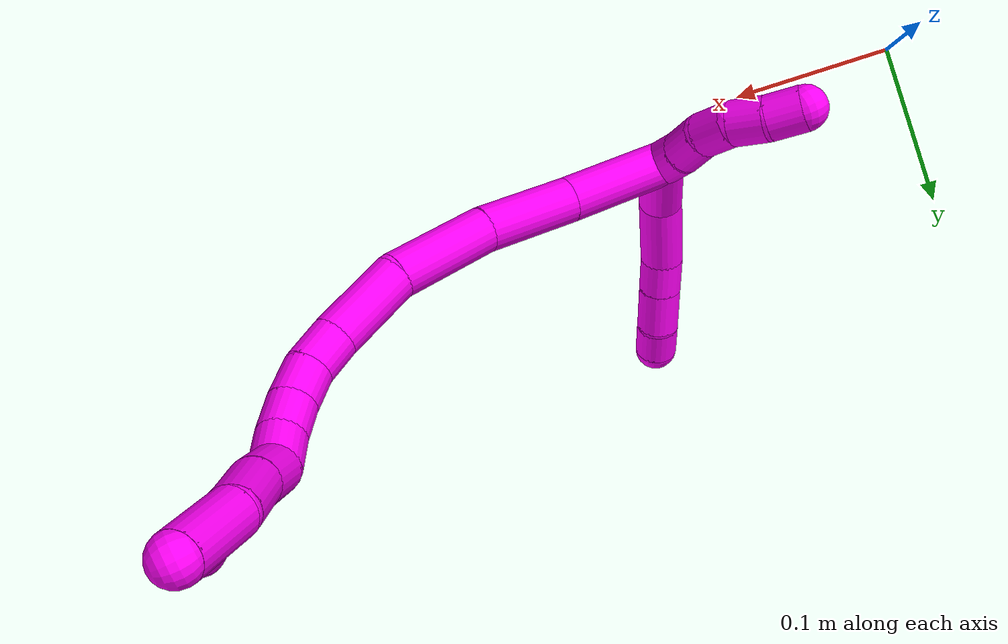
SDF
<sdf version="1.7">
 <world name="default">
  <model name="10">
   <static>0</static>
   <link name="10">
    <collision name="collision-cylinder-e_1_2_8">
     <pose>0.015698 0.009521 -0.000661 -1.64006 1.02456 -1.08484</pose>
     <geometry><cylinder><radius>0.0125</radius><length>0.036744</length></cylinder></geometry>
     <surface>
      <friction><ode><mu>1.16</mu><mu2>1.16</mu2><slip1>0</slip1><slip2>0</slip2></ode></friction>
      <contact><ode><kp>1e+06</kp><kd>1</kd><max_vel>0</max_vel><min_depth>0.001</min_depth></ode></contact>
     </surface>
    </collision>
    <visual name="visual-cylinder-e_1_2_8">
     <pose>0.015698 0.009521 -0.000661 -1.64006 1.02456 -1.08484</pose>
     <geometry><cylinder><radius>0.0125</radius><length>0.036744</length></cylinder></geometry>
     <material><ambient>1 0 0.964706 1</ambient></material>
    </visual>
    <collision name="collision-cylinder-e_2_8_9">
     <pose>0.045954 0.034435 0.00053 -1.45115 0.753903 -0.675381</pose>
     <geometry><cylinder><radius>0.0125</radius><length>0.042534</length></cylinder></geometry>
     <surface>
      <friction><ode><mu>1.16</mu><mu2>1.16</mu2><slip1>0</slip1><slip2>0</slip2></ode></friction>
      <contact><ode><kp>1e+06</kp><kd>1</kd><max_vel>0</max_vel><min_depth>0.001</min_depth></ode></contact>
     </surface>
    </collision>
    <visual name="visual-cylinder-e_2_8_9">
     <pose>0.045954 0.034435 0.00053 -1.45115 0.753903 -0.675381</pose>
     <geometry><cylinder><radius>0.0125</radius><length>0.042534</length></cylinder></geometry>
     <material><ambient>1 0 0.964706 1</ambient></material>
    </visual>
    <collision name="collision-cylinder-e_3_9_10">
     <pose>0.067205 0.058044 0.004709 -1.2946 0.664822 -0.510552</pose>
     <geometry><cylinder><radius>0.0125</radius><length>0.021701</length></cylinder></geometry>
     <surface>
      <friction><ode><mu>1.16</mu><mu2>1.16</mu2><slip1>0</slip1><slip2>0</slip2></ode></friction>
      <contact><ode><kp>1e+06</kp><kd>1</kd><max_vel>0</max_vel><min_depth>0.001</min_depth></ode></contact>
     </surface>
    </collision>
    <visual name="visual-cylinder-e_3_9_10">
     <pose>0.067205 0.058044 0.004709 -1.2946 0.664822 -0.510552</pose>
     <geometry><cylinder><radius>0.0125</radius><length>0.021701</length></cylinder></geometry>
     <material><ambient>1 0 0.964706 1</ambient></material>
    </visual>
    <collision name="collision-cylinder-e_4_10_11">
     <pose>0.082547 0.076884 0.009954 -1.30288 0.665541 -0.515346</pose>
     <geometry><cylinder><radius>0.0125</radius><length>0.028014</length></cylinder></geometry>
     <surface>
      <friction><ode><mu>1.16</mu><mu2>1.16</mu2><slip1>0</slip1><slip2>0</slip2></ode></friction>
      <contact><ode><kp>1e+06</kp><kd>1</kd><max_vel>0</max_vel><min_depth>0.001</min_depth></ode></contact>
     </surface>
    </collision>
    <visual name="visual-cylinder-e_4_10_11">
     <pose>0.082547 0.076884 0.009954 -1.30288 0.665541 -0.515346</pose>
     <geometry><cylinder><radius>0.0125</radius><length>0.028014</length></cylinder></geometry>
     <material><ambient>1 0 0.964706 1</ambient></material>
    </visual>
    <collision name="collision-cylinder-e_5_11_6">
     <pose>0.098803 0.094622 0.014243 -1.38019 0.809823 -0.680118</pose>
     <geometry><cylinder><radius>0.0125</radius><length>0.021008</length></cylinder></geometry>
     <surface>
      <friction><ode><mu>1.16</mu><mu2>1.16</mu2><slip1>0</slip1><slip2>0</slip2></ode></friction>
      <contact><ode><kp>1e+06</kp><kd>1</kd><max_vel>0</max_vel><min_depth>0.001</min_depth></ode></contact>
     </surface>
    </collision>
    <visual name="visual-cylinder-e_5_11_6">
     <pose>0.098803 0.094622 0.014243 -1.38019 0.809823 -0.680118</pose>
     <geometry><cylinder><radius>0.0125</radius><length>0.021008</length></cylinder></geometry>
     <material><ambient>1 0 0.964706 1</ambient></material>
    </visual>
    <collision name="collision-cylinder-e_1_2_12">
     <pose>-0.009352 -0.000346 -0.003524 3.04361 -1.20883 -2.99984</pose>
     <geometry><cylinder><radius>0.0125</radius><length>0.02</length></cylinder></geometry>
     <surface>
      <friction><ode><mu>1.16</mu><mu2>1.16</mu2><slip1>0</slip1><slip2>0</slip2></ode></friction>
      <contact><ode><kp>1e+06</kp><kd>1</kd><max_vel>0</max_vel><min_depth>0.001</min_depth></ode></contact>
     </surface>
    </collision>
    <visual name="visual-cylinder-e_1_2_12">
     <pose>-0.009352 -0.000346 -0.003524 3.04361 -1.20883 -2.99984</pose>
     <geometry><cylinder><radius>0.0125</radius><length>0.02</length></cylinder></geometry>
     <material><ambient>1 0 0.964706 1</ambient></material>
    </visual>
    <collision name="collision-cylinder-e_2_12_13">
     <pose>-0.027847 -0.00226 -0.010782 2.74411 -1.15385 -2.54134</pose>
     <geometry><cylinder><radius>0.0125</radius><length>0.02</length></cylinder></geometry>
     <surface>
      <friction><ode><mu>1.16</mu><mu2>1.16</mu2><slip1>0</slip1><slip2>0</slip2></ode></friction>
      <contact><ode><kp>1e+06</kp><kd>1</kd><max_vel>0</max_vel><min_depth>0.001</min_depth></ode></contact>
     </surface>
    </collision>
    <visual name="visual-cylinder-e_2_12_13">
     <pose>-0.027847 -0.00226 -0.010782 2.74411 -1.15385 -2.54134</pose>
     <geometry><cylinder><radius>0.0125</radius><length>0.02</length></cylinder></geometry>
     <material><ambient>1 0 0.964706 1</ambient></material>
    </visual>
    <collision name="collision-cylinder-e_3_13_14">
     <pose>-0.045462 -0.003187 -0.019792 -3.02059 -1.01051 2.92344</pose>
     <geometry><cylinder><radius>0.0125</radius><length>0.02</length></cylinder></geometry>
     <surface>
      <friction><ode><mu>1.16</mu><mu2>1.16</mu2><slip1>0</slip1><slip2>0</slip2></ode></friction>
      <contact><ode><kp>1e+06</kp><kd>1</kd><max_vel>0</max_vel><min_depth>0.001</min_depth></ode></contact>
     </surface>
    </collision>
    <visual name="visual-cylinder-e_3_13_14">
     <pose>-0.045462 -0.003187 -0.019792 -3.02059 -1.01051 2.92344</pose>
     <geometry><cylinder><radius>0.0125</radius><length>0.02</length></cylinder></geometry>
     <material><ambient>1 0 0.964706 1</ambient></material>
    </visual>
    <collision name="collision-cylinder-e_4_14_15">
     <pose>-0.060572 0.000293 -0.031986 -2.75235 -0.726033 2.18424</pose>
     <geometry><cylinder><radius>0.0125</radius><length>0.02</length></cylinder></geometry>
     <surface>
      <friction><ode><mu>1.16</mu><mu2>1.16</mu2><slip1>0</slip1><slip2>0</slip2></ode></friction>
      <contact><ode><kp>1e+06</kp><kd>1</kd><max_vel>0</max_vel><min_depth>0.001</min_depth></ode></contact>
     </surface>
    </collision>
    <visual name="visual-cylinder-e_4_14_15">
     <pose>-0.060572 0.000293 -0.031986 -2.75235 -0.726033 2.18424</pose>
     <geometry><cylinder><radius>0.0125</radius><length>0.02</length></cylinder></geometry>
     <material><ambient>1 0 0.964706 1</ambient></material>
    </visual>
    <collision name="collision-cylinder-e_5_15_5">
     <pose>-0.072769 0.004787 -0.047051 -2.94102 -0.589356 2.50135</pose>
     <geometry><cylinder><radius>0.0125</radius><length>0.02</length></cylinder></geometry>
     <surface>
      <friction><ode><mu>1.16</mu><mu2>1.16</mu2><slip1>0</slip1><slip2>0</slip2></ode></friction>
      <contact><ode><kp>1e+06</kp><kd>1</kd><max_vel>0</max_vel><min_depth>0.001</min_depth></ode></contact>
     </surface>
    </collision>
    <visual name="visual-cylinder-e_5_15_5">
     <pose>-0.072769 0.004787 -0.047051 -2.94102 -0.589356 2.50135</pose>
     <geometry><cylinder><radius>0.0125</radius><length>0.02</length></cylinder></geometry>
     <material><ambient>1 0 0.964706 1</ambient></material>
    </visual>
    <collision name="collision-cylinder-e_1_2_16">
     <pose>-0.002986 -0.001653 0.030031 0.054975 -0.098961 -0.002723</pose>
     <geometry><cylinder><radius>0.0125</radius><length>0.060449</length></cylinder></geometry>
     <surface>
      <friction><ode><mu>1.16</mu><mu2>1.16</mu2><slip1>0</slip1><slip2>0</slip2></ode></friction>
      <contact><ode><kp>1e+06</kp><kd>1</kd><max_vel>0</max_vel><min_depth>0.001</min_depth></ode></contact>
     </surface>
    </collision>
    <visual name="visual-cylinder-e_1_2_16">
     <pose>-0.002986 -0.001653 0.030031 0.054975 -0.098961 -0.002723</pose>
     <geometry><cylinder><radius>0.0125</radius><length>0.060449</length></cylinder></geometry>
     <material><ambient>1 0 0.964706 1</ambient></material>
    </visual>
    <collision name="collision-cylinder-e_2_16_17">
     <pose>-0.011334 -0.005355 0.086124 0.078479 -0.20229 -0.007969</pose>
     <geometry><cylinder><radius>0.0125</radius><length>0.053373</length></cylinder></geometry>
     <surface>
      <friction><ode><mu>1.16</mu><mu2>1.16</mu2><slip1>0</slip1><slip2>0</slip2></ode></friction>
      <contact><ode><kp>1e+06</kp><kd>1</kd><max_vel>0</max_vel><min_depth>0.001</min_depth></ode></contact>
     </surface>
    </collision>
    <visual name="visual-cylinder-e_2_16_17">
     <pose>-0.011334 -0.005355 0.086124 0.078479 -0.20229 -0.007969</pose>
     <geometry><cylinder><radius>0.0125</radius><length>0.053373</length></cylinder></geometry>
     <material><ambient>1 0 0.964706 1</ambient></material>
    </visual>
    <collision name="collision-cylinder-e_3_17_18">
     <pose>-0.024483 -0.005723 0.139669 -0.061115 -0.275633 0.008479</pose>
     <geometry><cylinder><radius>0.0125</radius><length>0.057229</length></cylinder></geometry>
     <surface>
      <friction><ode><mu>1.16</mu><mu2>1.16</mu2><slip1>0</slip1><slip2>0</slip2></ode></friction>
      <contact><ode><kp>1e+06</kp><kd>1</kd><max_vel>0</max_vel><min_depth>0.001</min_depth></ode></contact>
     </surface>
    </collision>
    <visual name="visual-cylinder-e_3_17_18">
     <pose>-0.024483 -0.005723 0.139669 -0.061115 -0.275633 0.008479</pose>
     <geometry><cylinder><radius>0.0125</radius><length>0.057229</length></cylinder></geometry>
     <material><ambient>1 0 0.964706 1</ambient></material>
    </visual>
    <collision name="collision-cylinder-e_4_18_19">
     <pose>-0.03793 0.00349 0.187877 -0.348519 -0.251212 0.044451</pose>
     <geometry><cylinder><radius>0.0125</radius><length>0.045531</length></cylinder></geometry>
     <surface>
      <friction><ode><mu>1.16</mu><mu2>1.16</mu2><slip1>0</slip1><slip2>0</slip2></ode></friction>
      <contact><ode><kp>1e+06</kp><kd>1</kd><max_vel>0</max_vel><min_depth>0.001</min_depth></ode></contact>
     </surface>
    </collision>
    <visual name="visual-cylinder-e_4_18_19">
     <pose>-0.03793 0.00349 0.187877 -0.348519 -0.251212 0.044451</pose>
     <geometry><cylinder><radius>0.0125</radius><length>0.045531</length></cylinder></geometry>
     <material><ambient>1 0 0.964706 1</ambient></material>
    </visual>
    <collision name="collision-cylinder-e_5_19_20">
     <pose>-0.047619 0.01525 0.217985 -0.423516 -0.373228 0.081137</pose>
     <geometry><cylinder><radius>0.0125</radius><length>0.022106</length></cylinder></geometry>
     <surface>
      <friction><ode><mu>1.16</mu><mu2>1.16</mu2><slip1>0</slip1><slip2>0</slip2></ode></friction>
      <contact><ode><kp>1e+06</kp><kd>1</kd><max_vel>0</max_vel><min_depth>0.001</min_depth></ode></contact>
     </surface>
    </collision>
    <visual name="visual-cylinder-e_5_19_20">
     <pose>-0.047619 0.01525 0.217985 -0.423516 -0.373228 0.081137</pose>
     <geometry><cylinder><radius>0.0125</radius><length>0.022106</length></cylinder></geometry>
     <material><ambient>1 0 0.964706 1</ambient></material>
    </visual>
    <collision name="collision-cylinder-e_6_20_21">
     <pose>-0.057009 0.025144 0.234557 -0.667341 -0.529764 0.1875</pose>
     <geometry><cylinder><radius>0.0125</radius><length>0.021214</length></cylinder></geometry>
     <surface>
      <friction><ode><mu>1.16</mu><mu2>1.16</mu2><slip1>0</slip1><slip2>0</slip2></ode></friction>
      <contact><ode><kp>1e+06</kp><kd>1</kd><max_vel>0</max_vel><min_depth>0.001</min_depth></ode></contact>
     </surface>
    </collision>
    <visual name="visual-cylinder-e_6_20_21">
     <pose>-0.057009 0.025144 0.234557 -0.667341 -0.529764 0.1875</pose>
     <geometry><cylinder><radius>0.0125</radius><length>0.021214</length></cylinder></geometry>
     <material><ambient>1 0 0.964706 1</ambient></material>
    </visual>
    <collision name="collision-cylinder-e_7_21_22">
     <pose>-0.06823 0.036468 0.247573 -0.770801 -0.62512 0.260712</pose>
     <geometry><cylinder><radius>0.0125</radius><length>0.020032</length></cylinder></geometry>
     <surface>
      <friction><ode><mu>1.16</mu><mu2>1.16</mu2><slip1>0</slip1><slip2>0</slip2></ode></friction>
      <contact><ode><kp>1e+06</kp><kd>1</kd><max_vel>0</max_vel><min_depth>0.001</min_depth></ode></contact>
     </surface>
    </collision>
    <visual name="visual-cylinder-e_7_21_22">
     <pose>-0.06823 0.036468 0.247573 -0.770801 -0.62512 0.260712</pose>
     <geometry><cylinder><radius>0.0125</radius><length>0.020032</length></cylinder></geometry>
     <material><ambient>1 0 0.964706 1</ambient></material>
    </visual>
    <collision name="collision-cylinder-e_8_22_1">
     <pose>-0.081129 0.047635 0.25796 -0.879207 -0.777305 0.380496</pose>
     <geometry><cylinder><radius>0.0125</radius><length>0.020066</length></cylinder></geometry>
     <surface>
      <friction><ode><mu>1.16</mu><mu2>1.16</mu2><slip1>0</slip1><slip2>0</slip2></ode></friction>
      <contact><ode><kp>1e+06</kp><kd>1</kd><max_vel>0</max_vel><min_depth>0.001</min_depth></ode></contact>
     </surface>
    </collision>
    <visual name="visual-cylinder-e_8_22_1">
     <pose>-0.081129 0.047635 0.25796 -0.879207 -0.777305 0.380496</pose>
     <geometry><cylinder><radius>0.0125</radius><length>0.020066</length></cylinder></geometry>
     <material><ambient>1 0 0.964706 1</ambient></material>
    </visual>
    <collision name="collision-cylinder-e_1_1_23">
     <pose>-0.09994 0.053389 0.268173 -0.04339 -1.12293 0.027295</pose>
     <geometry><cylinder><radius>0.0125</radius><length>0.026126</length></cylinder></geometry>
     <surface>
      <friction><ode><mu>1.16</mu><mu2>1.16</mu2><slip1>0</slip1><slip2>0</slip2></ode></friction>
      <contact><ode><kp>1e+06</kp><kd>1</kd><max_vel>0</max_vel><min_depth>0.001</min_depth></ode></contact>
     </surface>
    </collision>
    <visual name="visual-cylinder-e_1_1_23">
     <pose>-0.09994 0.053389 0.268173 -0.04339 -1.12293 0.027295</pose>
     <geometry><cylinder><radius>0.0125</radius><length>0.026126</length></cylinder></geometry>
     <material><ambient>1 0 0.964706 1</ambient></material>
    </visual>
    <collision name="collision-cylinder-e_2_23_24">
     <pose>-0.12703 0.056101 0.280366 -0.360666 -1.14255 0.233308</pose>
     <geometry><cylinder><radius>0.0125</radius><length>0.03367</length></cylinder></geometry>
     <surface>
      <friction><ode><mu>1.16</mu><mu2>1.16</mu2><slip1>0</slip1><slip2>0</slip2></ode></friction>
      <contact><ode><kp>1e+06</kp><kd>1</kd><max_vel>0</max_vel><min_depth>0.001</min_depth></ode></contact>
     </surface>
    </collision>
    <visual name="visual-cylinder-e_2_23_24">
     <pose>-0.12703 0.056101 0.280366 -0.360666 -1.14255 0.233308</pose>
     <geometry><cylinder><radius>0.0125</radius><length>0.03367</length></cylinder></geometry>
     <material><ambient>1 0 0.964706 1</ambient></material>
    </visual>
    <collision name="collision-cylinder-e_3_24_4">
     <pose>-0.157548 0.060524 0.299911 -0.149309 -0.857696 0.068369</pose>
     <geometry><cylinder><radius>0.0125</radius><length>0.040204</length></cylinder></geometry>
     <surface>
      <friction><ode><mu>1.16</mu><mu2>1.16</mu2><slip1>0</slip1><slip2>0</slip2></ode></friction>
      <contact><ode><kp>1e+06</kp><kd>1</kd><max_vel>0</max_vel><min_depth>0.001</min_depth></ode></contact>
     </surface>
    </collision>
    <visual name="visual-cylinder-e_3_24_4">
     <pose>-0.157548 0.060524 0.299911 -0.149309 -0.857696 0.068369</pose>
     <geometry><cylinder><radius>0.0125</radius><length>0.040204</length></cylinder></geometry>
     <material><ambient>1 0 0.964706 1</ambient></material>
    </visual>
    <collision name="collision-cylinder-e_1_1_25">
     <pose>-0.060822 0.059617 0.278526 -0.384381 1.00762 -0.213725</pose>
     <geometry><cylinder><radius>0.0125</radius><length>0.064675</length></cylinder></geometry>
     <surface>
      <friction><ode><mu>1.16</mu><mu2>1.16</mu2><slip1>0</slip1><slip2>0</slip2></ode></friction>
      <contact><ode><kp>1e+06</kp><kd>1</kd><max_vel>0</max_vel><min_depth>0.001</min_depth></ode></contact>
     </surface>
    </collision>
    <visual name="visual-cylinder-e_1_1_25">
     <pose>-0.060822 0.059617 0.278526 -0.384381 1.00762 -0.213725</pose>
     <geometry><cylinder><radius>0.0125</radius><length>0.064675</length></cylinder></geometry>
     <material><ambient>1 0 0.964706 1</ambient></material>
    </visual>
    <collision name="collision-cylinder-e_2_25_3">
     <pose>-0.018916 0.072713 0.302016 -0.724241 0.969323 -0.393773</pose>
     <geometry><cylinder><radius>0.0125</radius><length>0.035325</length></cylinder></geometry>
     <surface>
      <friction><ode><mu>1.16</mu><mu2>1.16</mu2><slip1>0</slip1><slip2>0</slip2></ode></friction>
      <contact><ode><kp>1e+06</kp><kd>1</kd><max_vel>0</max_vel><min_depth>0.001</min_depth></ode></contact>
     </surface>
    </collision>
    <visual name="visual-cylinder-e_2_25_3">
     <pose>-0.018916 0.072713 0.302016 -0.724241 0.969323 -0.393773</pose>
     <geometry><cylinder><radius>0.0125</radius><length>0.035325</length></cylinder></geometry>
     <material><ambient>1 0 0.964706 1</ambient></material>
    </visual>
    <collision name="collision-sphere-3">
     <pose>-0.004353 0.079335 0.309502 0 -0 0</pose>
     <geometry><sphere><radius>0.0125</radius></sphere></geometry>
     <surface>
      <friction><ode><mu>1.16</mu><mu2>1.16</mu2><slip1>0</slip1><slip2>0</slip2></ode></friction>
      <contact><ode><kp>1e+06</kp><kd>1</kd><max_vel>0</max_vel><min_depth>0.001</min_depth></ode></contact>
     </surface>
    </collision>
    <visual name="visual-sphere-3">
     <pose>-0.004353 0.079335 0.309502 0 -0 0</pose>
     <geometry><sphere><radius>0.0125</radius></sphere></geometry>
     <material><ambient>1 0 0.964706 1</ambient></material>
    </visual>
    <collision name="collision-sphere-25">
     <pose>-0.033479 0.066091 0.29453 0 -0 0</pose>
     <geometry><sphere><radius>0.0125</radius></sphere></geometry>
     <surface>
      <friction><ode><mu>1.16</mu><mu2>1.16</mu2><slip1>0</slip1><slip2>0</slip2></ode></friction>
      <contact><ode><kp>1e+06</kp><kd>1</kd><max_vel>0</max_vel><min_depth>0.001</min_depth></ode></contact>
     </surface>
    </collision>
    <visual name="visual-sphere-25">
     <pose>-0.033479 0.066091 0.29453 0 -0 0</pose>
     <geometry><sphere><radius>0.0125</radius></sphere></geometry>
     <material><ambient>1 0 0.964706 1</ambient></material>
    </visual>
    <collision name="collision-sphere-4">
     <pose>-0.172752 0.062481 0.312915 0 -0 0</pose>
     <geometry><sphere><radius>0.0125</radius></sphere></geometry>
     <surface>
      <friction><ode><mu>1.16</mu><mu2>1.16</mu2><slip1>0</slip1><slip2>0</slip2></ode></friction>
      <contact><ode><kp>1e+06</kp><kd>1</kd><max_vel>0</max_vel><min_depth>0.001</min_depth></ode></contact>
     </surface>
    </collision>
    <visual name="visual-sphere-4">
     <pose>-0.172752 0.062481 0.312915 0 -0 0</pose>
     <geometry><sphere><radius>0.0125</radius></sphere></geometry>
     <material><ambient>1 0 0.964706 1</ambient></material>
    </visual>
    <collision name="collision-sphere-24">
     <pose>-0.142344 0.058568 0.286907 0 -0 0</pose>
     <geometry><sphere><radius>0.0125</radius></sphere></geometry>
     <surface>
      <friction><ode><mu>1.16</mu><mu2>1.16</mu2><slip1>0</slip1><slip2>0</slip2></ode></friction>
      <contact><ode><kp>1e+06</kp><kd>1</kd><max_vel>0</max_vel><min_depth>0.001</min_depth></ode></contact>
     </surface>
    </collision>
    <visual name="visual-sphere-24">
     <pose>-0.142344 0.058568 0.286907 0 -0 0</pose>
     <geometry><sphere><radius>0.0125</radius></sphere></geometry>
     <material><ambient>1 0 0.964706 1</ambient></material>
    </visual>
    <collision name="collision-sphere-23">
     <pose>-0.111715 0.053634 0.273824 0 -0 0</pose>
     <geometry><sphere><radius>0.0125</radius></sphere></geometry>
     <surface>
      <friction><ode><mu>1.16</mu><mu2>1.16</mu2><slip1>0</slip1><slip2>0</slip2></ode></friction>
      <contact><ode><kp>1e+06</kp><kd>1</kd><max_vel>0</max_vel><min_depth>0.001</min_depth></ode></contact>
     </surface>
    </collision>
    <visual name="visual-sphere-23">
     <pose>-0.111715 0.053634 0.273824 0 -0 0</pose>
     <geometry><sphere><radius>0.0125</radius></sphere></geometry>
     <material><ambient>1 0 0.964706 1</ambient></material>
    </visual>
    <collision name="collision-sphere-1">
     <pose>-0.088166 0.053143 0.262521 0 -0 0</pose>
     <geometry><sphere><radius>0.0125</radius></sphere></geometry>
     <surface>
      <friction><ode><mu>1.16</mu><mu2>1.16</mu2><slip1>0</slip1><slip2>0</slip2></ode></friction>
      <contact><ode><kp>1e+06</kp><kd>1</kd><max_vel>0</max_vel><min_depth>0.001</min_depth></ode></contact>
     </surface>
    </collision>
    <visual name="visual-sphere-1">
     <pose>-0.088166 0.053143 0.262521 0 -0 0</pose>
     <geometry><sphere><radius>0.0125</radius></sphere></geometry>
     <material><ambient>1 0 0.964706 1</ambient></material>
    </visual>
    <collision name="collision-sphere-22">
     <pose>-0.074092 0.042126 0.253399 0 -0 0</pose>
     <geometry><sphere><radius>0.0125</radius></sphere></geometry>
     <surface>
      <friction><ode><mu>1.16</mu><mu2>1.16</mu2><slip1>0</slip1><slip2>0</slip2></ode></friction>
      <contact><ode><kp>1e+06</kp><kd>1</kd><max_vel>0</max_vel><min_depth>0.001</min_depth></ode></contact>
     </surface>
    </collision>
    <visual name="visual-sphere-22">
     <pose>-0.074092 0.042126 0.253399 0 -0 0</pose>
     <geometry><sphere><radius>0.0125</radius></sphere></geometry>
     <material><ambient>1 0 0.964706 1</ambient></material>
    </visual>
    <collision name="collision-sphere-21">
     <pose>-0.062369 0.030809 0.241747 0 -0 0</pose>
     <geometry><sphere><radius>0.0125</radius></sphere></geometry>
     <surface>
      <friction><ode><mu>1.16</mu><mu2>1.16</mu2><slip1>0</slip1><slip2>0</slip2></ode></friction>
      <contact><ode><kp>1e+06</kp><kd>1</kd><max_vel>0</max_vel><min_depth>0.001</min_depth></ode></contact>
     </surface>
    </collision>
    <visual name="visual-sphere-21">
     <pose>-0.062369 0.030809 0.241747 0 -0 0</pose>
     <geometry><sphere><radius>0.0125</radius></sphere></geometry>
     <material><ambient>1 0 0.964706 1</ambient></material>
    </visual>
    <collision name="collision-sphere-6">
     <pose>0.10641 0.101734 0.015615 0 -0 0</pose>
     <geometry><sphere><radius>0.0125</radius></sphere></geometry>
     <surface>
      <friction><ode><mu>1.16</mu><mu2>1.16</mu2><slip1>0</slip1><slip2>0</slip2></ode></friction>
      <contact><ode><kp>1e+06</kp><kd>1</kd><max_vel>0</max_vel><min_depth>0.001</min_depth></ode></contact>
     </surface>
    </collision>
    <visual name="visual-sphere-6">
     <pose>0.10641 0.101734 0.015615 0 -0 0</pose>
     <geometry><sphere><radius>0.0125</radius></sphere></geometry>
     <material><ambient>1 0 0.964706 1</ambient></material>
    </visual>
    <collision name="collision-sphere-11">
     <pose>0.091196 0.087509 0.012871 0 -0 0</pose>
     <geometry><sphere><radius>0.0125</radius></sphere></geometry>
     <surface>
      <friction><ode><mu>1.16</mu><mu2>1.16</mu2><slip1>0</slip1><slip2>0</slip2></ode></friction>
      <contact><ode><kp>1e+06</kp><kd>1</kd><max_vel>0</max_vel><min_depth>0.001</min_depth></ode></contact>
     </surface>
    </collision>
    <visual name="visual-sphere-11">
     <pose>0.091196 0.087509 0.012871 0 -0 0</pose>
     <geometry><sphere><radius>0.0125</radius></sphere></geometry>
     <material><ambient>1 0 0.964706 1</ambient></material>
    </visual>
    <collision name="collision-sphere-10">
     <pose>0.073898 0.06626 0.007038 0 -0 0</pose>
     <geometry><sphere><radius>0.0125</radius></sphere></geometry>
     <surface>
      <friction><ode><mu>1.16</mu><mu2>1.16</mu2><slip1>0</slip1><slip2>0</slip2></ode></friction>
      <contact><ode><kp>1e+06</kp><kd>1</kd><max_vel>0</max_vel><min_depth>0.001</min_depth></ode></contact>
     </surface>
    </collision>
    <visual name="visual-sphere-10">
     <pose>0.073898 0.06626 0.007038 0 -0 0</pose>
     <geometry><sphere><radius>0.0125</radius></sphere></geometry>
     <material><ambient>1 0 0.964706 1</ambient></material>
    </visual>
    <collision name="collision-sphere-9">
     <pose>0.060511 0.049828 0.00238 0 -0 0</pose>
     <geometry><sphere><radius>0.0125</radius></sphere></geometry>
     <surface>
      <friction><ode><mu>1.16</mu><mu2>1.16</mu2><slip1>0</slip1><slip2>0</slip2></ode></friction>
      <contact><ode><kp>1e+06</kp><kd>1</kd><max_vel>0</max_vel><min_depth>0.001</min_depth></ode></contact>
     </surface>
    </collision>
    <visual name="visual-sphere-9">
     <pose>0.060511 0.049828 0.00238 0 -0 0</pose>
     <geometry><sphere><radius>0.0125</radius></sphere></geometry>
     <material><ambient>1 0 0.964706 1</ambient></material>
    </visual>
    <collision name="collision-sphere-2">
     <geometry><sphere><radius>0.0125</radius></sphere></geometry>
     <surface>
      <friction><ode><mu>1.16</mu><mu2>1.16</mu2><slip1>0</slip1><slip2>0</slip2></ode></friction>
      <contact><ode><kp>1e+06</kp><kd>1</kd><max_vel>0</max_vel><min_depth>0.001</min_depth></ode></contact>
     </surface>
    </collision>
    <visual name="visual-sphere-2">
     <geometry><sphere><radius>0.0125</radius></sphere></geometry>
     <material><ambient>1 0 0.964706 1</ambient></material>
    </visual>
    <collision name="collision-sphere-19">
     <pose>-0.043589 0.01102 0.208603 0 -0 0</pose>
     <geometry><sphere><radius>0.0125</radius></sphere></geometry>
     <surface>
      <friction><ode><mu>1.16</mu><mu2>1.16</mu2><slip1>0</slip1><slip2>0</slip2></ode></friction>
      <contact><ode><kp>1e+06</kp><kd>1</kd><max_vel>0</max_vel><min_depth>0.001</min_depth></ode></contact>
     </surface>
    </collision>
    <visual name="visual-sphere-19">
     <pose>-0.043589 0.01102 0.208603 0 -0 0</pose>
     <geometry><sphere><radius>0.0125</radius></sphere></geometry>
     <material><ambient>1 0 0.964706 1</ambient></material>
    </visual>
    <collision name="collision-sphere-8">
     <pose>0.031397 0.019042 -0.001321 0 -0 0</pose>
     <geometry><sphere><radius>0.0125</radius></sphere></geometry>
     <surface>
      <friction><ode><mu>1.16</mu><mu2>1.16</mu2><slip1>0</slip1><slip2>0</slip2></ode></friction>
      <contact><ode><kp>1e+06</kp><kd>1</kd><max_vel>0</max_vel><min_depth>0.001</min_depth></ode></contact>
     </surface>
    </collision>
    <visual name="visual-sphere-8">
     <pose>0.031397 0.019042 -0.001321 0 -0 0</pose>
     <geometry><sphere><radius>0.0125</radius></sphere></geometry>
     <material><ambient>1 0 0.964706 1</ambient></material>
    </visual>
    <collision name="collision-sphere-12">
     <pose>-0.018704 -0.000693 -0.007048 0 -0 0</pose>
     <geometry><sphere><radius>0.0125</radius></sphere></geometry>
     <surface>
      <friction><ode><mu>1.16</mu><mu2>1.16</mu2><slip1>0</slip1><slip2>0</slip2></ode></friction>
      <contact><ode><kp>1e+06</kp><kd>1</kd><max_vel>0</max_vel><min_depth>0.001</min_depth></ode></contact>
     </surface>
    </collision>
    <visual name="visual-sphere-12">
     <pose>-0.018704 -0.000693 -0.007048 0 -0 0</pose>
     <geometry><sphere><radius>0.0125</radius></sphere></geometry>
     <material><ambient>1 0 0.964706 1</ambient></material>
    </visual>
    <collision name="collision-sphere-13">
     <pose>-0.036991 -0.003828 -0.014516 0 -0 0</pose>
     <geometry><sphere><radius>0.0125</radius></sphere></geometry>
     <surface>
      <friction><ode><mu>1.16</mu><mu2>1.16</mu2><slip1>0</slip1><slip2>0</slip2></ode></friction>
      <contact><ode><kp>1e+06</kp><kd>1</kd><max_vel>0</max_vel><min_depth>0.001</min_depth></ode></contact>
     </surface>
    </collision>
    <visual name="visual-sphere-13">
     <pose>-0.036991 -0.003828 -0.014516 0 -0 0</pose>
     <geometry><sphere><radius>0.0125</radius></sphere></geometry>
     <material><ambient>1 0 0.964706 1</ambient></material>
    </visual>
    <collision name="collision-sphere-14">
     <pose>-0.053933 -0.002545 -0.025067 0 -0 0</pose>
     <geometry><sphere><radius>0.0125</radius></sphere></geometry>
     <surface>
      <friction><ode><mu>1.16</mu><mu2>1.16</mu2><slip1>0</slip1><slip2>0</slip2></ode></friction>
      <contact><ode><kp>1e+06</kp><kd>1</kd><max_vel>0</max_vel><min_depth>0.001</min_depth></ode></contact>
     </surface>
    </collision>
    <visual name="visual-sphere-14">
     <pose>-0.053933 -0.002545 -0.025067 0 -0 0</pose>
     <geometry><sphere><radius>0.0125</radius></sphere></geometry>
     <material><ambient>1 0 0.964706 1</ambient></material>
    </visual>
    <collision name="collision-sphere-15">
     <pose>-0.067211 0.003131 -0.038905 0 -0 0</pose>
     <geometry><sphere><radius>0.0125</radius></sphere></geometry>
     <surface>
      <friction><ode><mu>1.16</mu><mu2>1.16</mu2><slip1>0</slip1><slip2>0</slip2></ode></friction>
      <contact><ode><kp>1e+06</kp><kd>1</kd><max_vel>0</max_vel><min_depth>0.001</min_depth></ode></contact>
     </surface>
    </collision>
    <visual name="visual-sphere-15">
     <pose>-0.067211 0.003131 -0.038905 0 -0 0</pose>
     <geometry><sphere><radius>0.0125</radius></sphere></geometry>
     <material><ambient>1 0 0.964706 1</ambient></material>
    </visual>
    <collision name="collision-sphere-5">
     <pose>-0.078327 0.006443 -0.055197 0 -0 0</pose>
     <geometry><sphere><radius>0.0125</radius></sphere></geometry>
     <surface>
      <friction><ode><mu>1.16</mu><mu2>1.16</mu2><slip1>0</slip1><slip2>0</slip2></ode></friction>
      <contact><ode><kp>1e+06</kp><kd>1</kd><max_vel>0</max_vel><min_depth>0.001</min_depth></ode></contact>
     </surface>
    </collision>
    <visual name="visual-sphere-5">
     <pose>-0.078327 0.006443 -0.055197 0 -0 0</pose>
     <geometry><sphere><radius>0.0125</radius></sphere></geometry>
     <material><ambient>1 0 0.964706 1</ambient></material>
    </visual>
    <collision name="collision-sphere-16">
     <pose>-0.005972 -0.003305 0.060063 0 -0 0</pose>
     <geometry><sphere><radius>0.0125</radius></sphere></geometry>
     <surface>
      <friction><ode><mu>1.16</mu><mu2>1.16</mu2><slip1>0</slip1><slip2>0</slip2></ode></friction>
      <contact><ode><kp>1e+06</kp><kd>1</kd><max_vel>0</max_vel><min_depth>0.001</min_depth></ode></contact>
     </surface>
    </collision>
    <visual name="visual-sphere-16">
     <pose>-0.005972 -0.003305 0.060063 0 -0 0</pose>
     <geometry><sphere><radius>0.0125</radius></sphere></geometry>
     <material><ambient>1 0 0.964706 1</ambient></material>
    </visual>
    <collision name="collision-sphere-17">
     <pose>-0.016696 -0.007404 0.112186 0 -0 0</pose>
     <geometry><sphere><radius>0.0125</radius></sphere></geometry>
     <surface>
      <friction><ode><mu>1.16</mu><mu2>1.16</mu2><slip1>0</slip1><slip2>0</slip2></ode></friction>
      <contact><ode><kp>1e+06</kp><kd>1</kd><max_vel>0</max_vel><min_depth>0.001</min_depth></ode></contact>
     </surface>
    </collision>
    <visual name="visual-sphere-17">
     <pose>-0.016696 -0.007404 0.112186 0 -0 0</pose>
     <geometry><sphere><radius>0.0125</radius></sphere></geometry>
     <material><ambient>1 0 0.964706 1</ambient></material>
    </visual>
    <collision name="collision-sphere-18">
     <pose>-0.032271 -0.004041 0.167152 0 -0 0</pose>
     <geometry><sphere><radius>0.0125</radius></sphere></geometry>
     <surface>
      <friction><ode><mu>1.16</mu><mu2>1.16</mu2><slip1>0</slip1><slip2>0</slip2></ode></friction>
      <contact><ode><kp>1e+06</kp><kd>1</kd><max_vel>0</max_vel><min_depth>0.001</min_depth></ode></contact>
     </surface>
    </collision>
    <visual name="visual-sphere-18">
     <pose>-0.032271 -0.004041 0.167152 0 -0 0</pose>
     <geometry><sphere><radius>0.0125</radius></sphere></geometry>
     <material><ambient>1 0 0.964706 1</ambient></material>
    </visual>
    <collision name="collision-sphere-20">
     <pose>-0.051649 0.01948 0.227368 0 -0 0</pose>
     <geometry><sphere><radius>0.0125</radius></sphere></geometry>
     <surface>
      <friction><ode><mu>1.16</mu><mu2>1.16</mu2><slip1>0</slip1><slip2>0</slip2></ode></friction>
      <contact><ode><kp>1e+06</kp><kd>1</kd><max_vel>0</max_vel><min_depth>0.001</min_depth></ode></contact>
     </surface>
    </collision>
    <visual name="visual-sphere-20">
     <pose>-0.051649 0.01948 0.227368 0 -0 0</pose>
     <geometry><sphere><radius>0.0125</radius></sphere></geometry>
     <material><ambient>1 0 0.964706 1</ambient></material>
    </visual>
    <inertial>
     <pose>-0.030582 0.028461 0.131322 0 -0 0</pose>
     <mass>0.75</mass>
     <inertia><ixx>8.3e-05</ixx><ixy>0</ixy><ixz>0</ixz><iyy>0.000135</iyy><iyz>0</iyz><izz>-9e-06</izz></inertia>
    </inertial>
   </link>
   <pose>0.165229 0.033351 0.113362 -0.14215 1.28099 -0.004581</pose>
  </model>
 </world>
</sdf>
